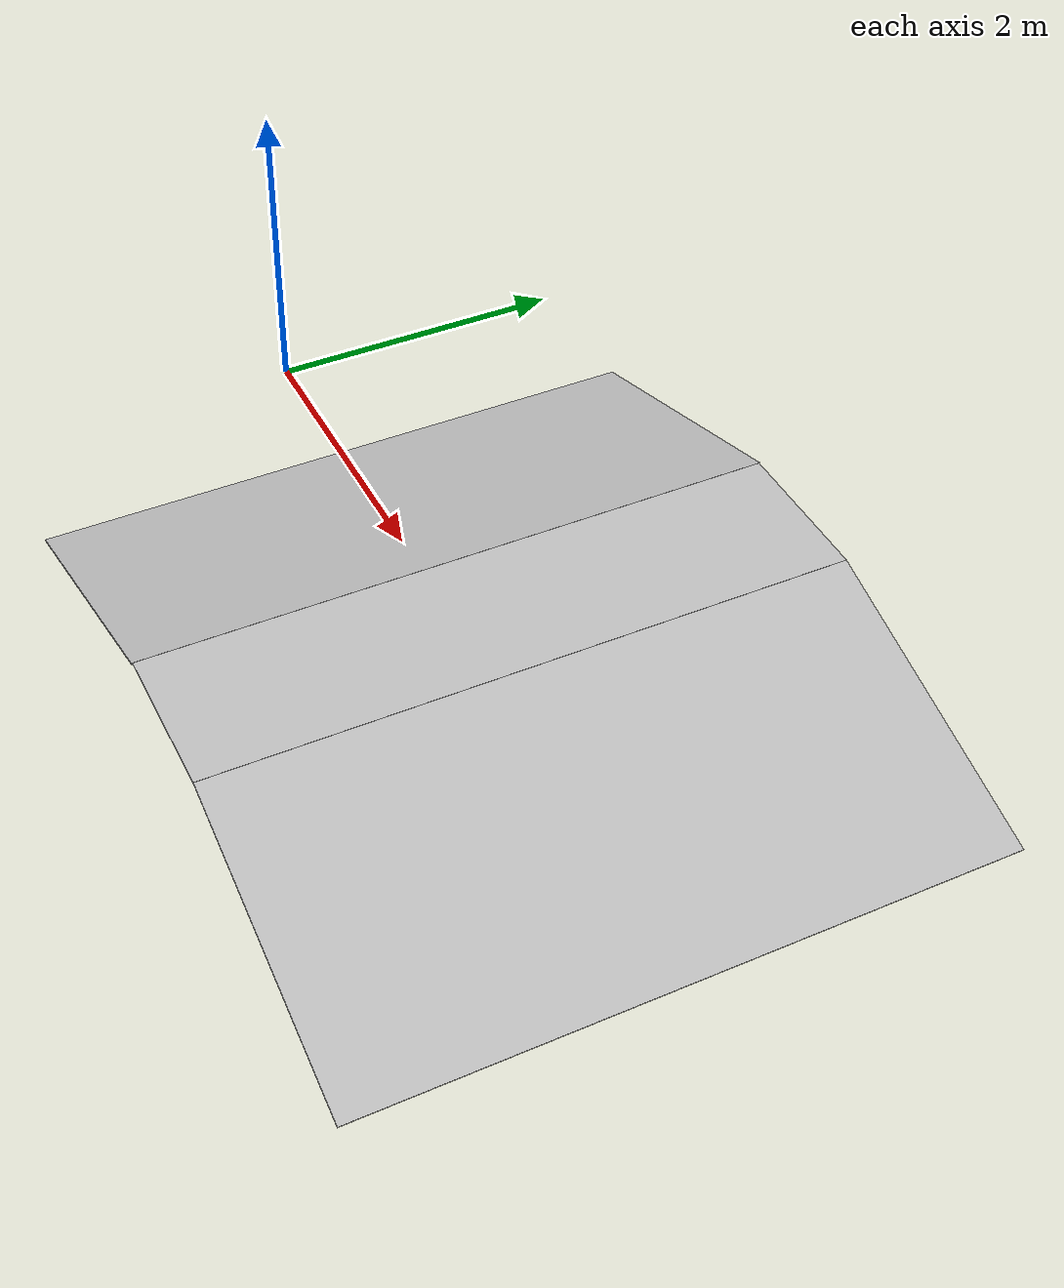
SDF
<?xml version='1.0'?>
<sdf version='1.7'>
  <model name='slope'>
    <link name='slope_up'>
      <pose>1.95534 0 0.29552 0 -0.3 0</pose>
      <self_collide>0</self_collide>
      <kinematic>0</kinematic>
      <gravity>1</gravity>
      <enable_wind>0</enable_wind>
      <inertial>
        <inertia>
          <ixx>0</ixx>
          <ixy>0</ixy>
          <ixz>0</ixz>
          <iyy>0</iyy>
          <iyz>0</iyz>
          <izz>0</izz>
        </inertia>
        <mass>0</mass>
        <pose>0 0 0 0 -0 0</pose>
      </inertial>
      <visual name='visual'>
        <geometry>
          <box>
            <size>2 4.08693 0.01</size>
          </box>
        </geometry>
        <material>
          <shader type='pixel'/>
        </material>
        <pose>0 0 0 0 -0 0</pose>
        <transparency>0</transparency>
        <cast_shadows>1</cast_shadows>
      </visual>
      <collision name='collision'>
        <laser_retro>0</laser_retro>
        <max_contacts>10</max_contacts>
        <pose>0 0 0 0 -0 0</pose>
        <geometry>
          <box>
            <size>2 4.08693 0.01</size>
          </box>
        </geometry>
        <surface>
          <friction>
            <ode>
              <mu>1</mu>
              <mu2>1</mu2>
              <fdir1>0 0 0</fdir1>
              <slip1>0</slip1>
              <slip2>0</slip2>
            </ode>
            <torsional>
              <coefficient>1</coefficient>
              <patch_radius>0</patch_radius>
              <surface_radius>0</surface_radius>
              <use_patch_radius>1</use_patch_radius>
              <ode>
                <slip>0</slip>
              </ode>
            </torsional>
          </friction>
          <bounce>
            <restitution_coefficient>0</restitution_coefficient>
            <threshold>1e+06</threshold>
          </bounce>
          <contact>
            <collide_without_contact>0</collide_without_contact>
            <collide_without_contact_bitmask>1</collide_without_contact_bitmask>
            <collide_bitmask>1</collide_bitmask>
            <ode>
              <soft_cfm>0</soft_cfm>
              <soft_erp>0.2</soft_erp>
              <kp>1e+13</kp>
              <kd>1</kd>
              <max_vel>0.01</max_vel>
              <min_depth>0</min_depth>
            </ode>
            <bullet>
              <split_impulse>1</split_impulse>
              <split_impulse_penetration_threshold>-0.01</split_impulse_penetration_threshold>
              <soft_cfm>0</soft_cfm>
              <soft_erp>0.2</soft_erp>
              <kp>1e+13</kp>
              <kd>1</kd>
            </bullet>
          </contact>
        </surface>
      </collision>
    </link>
    <link name='slope_down'>
      <pose>4.86601 0 0.29552 0 0.3 0</pose>
      <self_collide>0</self_collide>
      <kinematic>0</kinematic>
      <gravity>1</gravity>
      <enable_wind>0</enable_wind>
      <inertial>
        <inertia>
          <ixx>0</ixx>
          <ixy>0</ixy>
          <ixz>0</ixz>
          <iyy>0</iyy>
          <iyz>0</iyz>
          <izz>0</izz>
        </inertia>
        <mass>0</mass>
        <pose>0 0 0 0 -0 0</pose>
      </inertial>
      <visual name='visual'>
        <geometry>
          <box>
            <size>2 4.07192 0.01</size>
          </box>
        </geometry>
        <material>
          <shader type='pixel'/>
        </material>
        <pose>0 0 0 0 -0 0</pose>
        <transparency>0</transparency>
        <cast_shadows>1</cast_shadows>
      </visual>
      <collision name='collision'>
        <laser_retro>0</laser_retro>
        <max_contacts>10</max_contacts>
        <pose>0 0 0 0 -0 0</pose>
        <geometry>
          <box>
            <size>2 4.07192 0.01</size>
          </box>
        </geometry>
        <surface>
          <friction>
            <ode>
              <mu>1</mu>
              <mu2>1</mu2>
              <fdir1>0 0 0</fdir1>
              <slip1>0</slip1>
              <slip2>0</slip2>
            </ode>
            <torsional>
              <coefficient>1</coefficient>
              <patch_radius>0</patch_radius>
              <surface_radius>0</surface_radius>
              <use_patch_radius>1</use_patch_radius>
              <ode>
                <slip>0</slip>
              </ode>
            </torsional>
          </friction>
          <bounce>
            <restitution_coefficient>0</restitution_coefficient>
            <threshold>1e+06</threshold>
          </bounce>
          <contact>
            <collide_without_contact>0</collide_without_contact>
            <collide_without_contact_bitmask>1</collide_without_contact_bitmask>
            <collide_bitmask>1</collide_bitmask>
            <ode>
              <soft_cfm>0</soft_cfm>
              <soft_erp>0.2</soft_erp>
              <kp>1e+13</kp>
              <kd>1</kd>
              <max_vel>0.01</max_vel>
              <min_depth>0</min_depth>
            </ode>
            <bullet>
              <split_impulse>1</split_impulse>
              <split_impulse_penetration_threshold>-0.01</split_impulse_penetration_threshold>
              <soft_cfm>0</soft_cfm>
              <soft_erp>0.2</soft_erp>
              <kp>1e+13</kp>
              <kd>1</kd>
            </bullet>
          </contact>
        </surface>
      </collision>
    </link>
    <link name='slope_zero'>
      <pose>3.41067 0 0.59104 0 -0 0</pose>
      <self_collide>0</self_collide>
      <kinematic>0</kinematic>
      <gravity>1</gravity>
      <enable_wind>0</enable_wind>
      <inertial>
        <inertia>
          <ixx>0</ixx>
          <ixy>0</ixy>
          <ixz>0</ixz>
          <iyy>0</iyy>
          <iyz>0</iyz>
          <izz>0</izz>
        </inertia>
        <mass>0</mass>
        <pose>0 0 0 0 -0 0</pose>
      </inertial>
      <visual name='visual'>
        <geometry>
          <box>
            <size>1 4.07319 0.01</size>
          </box>
        </geometry>
        <material>
          <shader type='pixel'/>
        </material>
        <pose>0 0 0 0 -0 0</pose>
        <transparency>0</transparency>
        <cast_shadows>1</cast_shadows>
      </visual>
      <collision name='collision'>
        <laser_retro>0</laser_retro>
        <max_contacts>10</max_contacts>
        <pose>0 0 0 0 -0 0</pose>
        <geometry>
          <box>
            <size>1 4.07319 0.01</size>
          </box>
        </geometry>
        <surface>
          <friction>
            <ode>
              <mu>1</mu>
              <mu2>1</mu2>
              <fdir1>0 0 0</fdir1>
              <slip1>0</slip1>
              <slip2>0</slip2>
            </ode>
            <torsional>
              <coefficient>1</coefficient>
              <patch_radius>0</patch_radius>
              <surface_radius>0</surface_radius>
              <use_patch_radius>1</use_patch_radius>
              <ode>
                <slip>0</slip>
              </ode>
            </torsional>
          </friction>
          <bounce>
            <restitution_coefficient>0</restitution_coefficient>
            <threshold>1e+06</threshold>
          </bounce>
          <contact>
            <collide_without_contact>0</collide_without_contact>
            <collide_without_contact_bitmask>1</collide_without_contact_bitmask>
            <collide_bitmask>1</collide_bitmask>
            <ode>
              <soft_cfm>0</soft_cfm>
              <soft_erp>0.2</soft_erp>
              <kp>1e+13</kp>
              <kd>1</kd>
              <max_vel>0.01</max_vel>
              <min_depth>0</min_depth>
            </ode>
            <bullet>
              <split_impulse>1</split_impulse>
              <split_impulse_penetration_threshold>-0.01</split_impulse_penetration_threshold>
              <soft_cfm>0</soft_cfm>
              <soft_erp>0.2</soft_erp>
              <kp>1e+13</kp>
              <kd>1</kd>
            </bullet>
          </contact>
        </surface>
      </collision>
    </link>
    <static>1</static>
    <allow_auto_disable>1</allow_auto_disable>
  </model>
</sdf>
